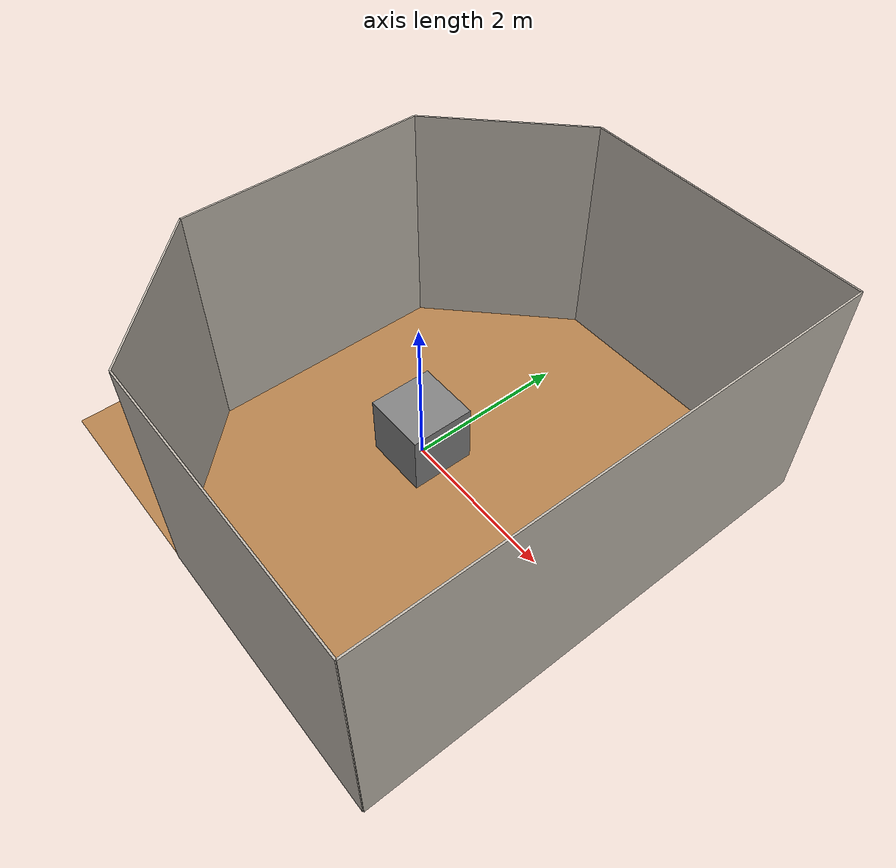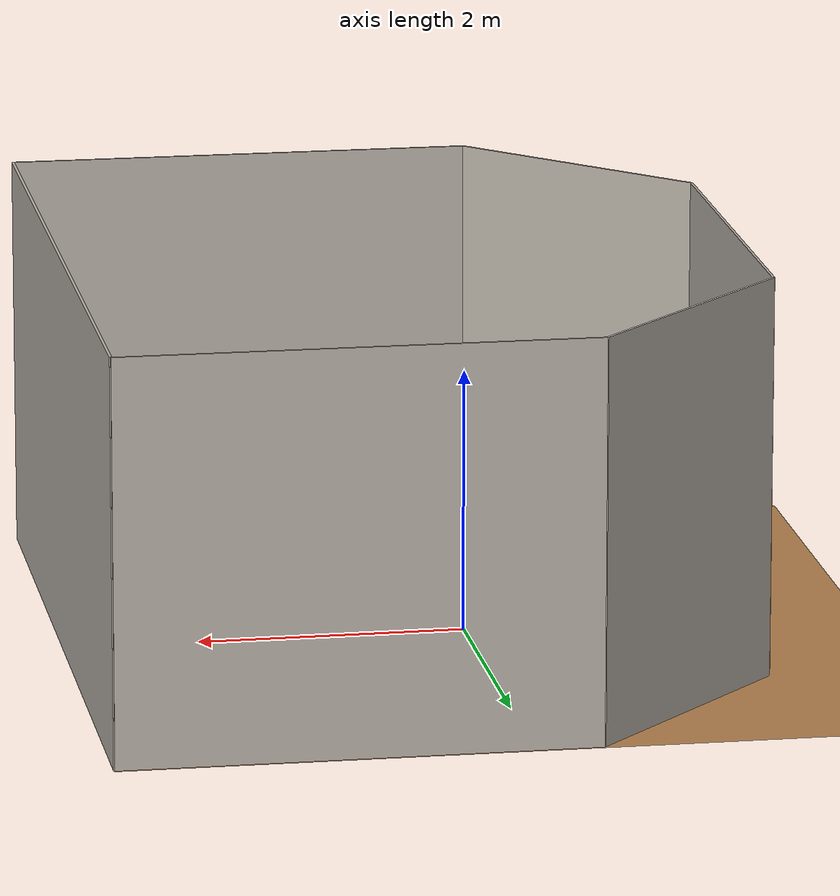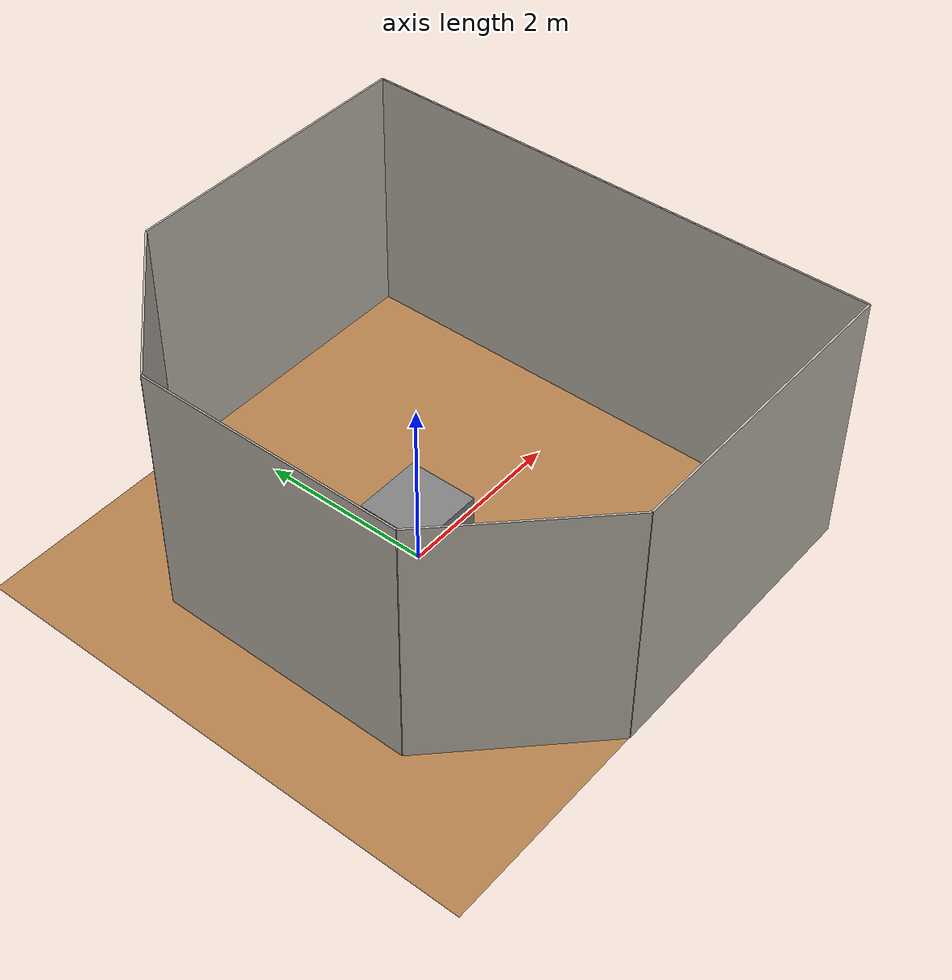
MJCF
<mujoco model="table_arena">
  <asset>
    <texture builtin="gradient" height="256" rgb1=".9 .9 1." rgb2=".2 .3 .4" type="skybox" width="256"/>
    <texture file="../textures/wood-tiles.png" type="2d" name="texplane"/>
    <material name="floorplane" reflectance="0.01" shininess="0.0" specular="0.0" texrepeat="2 2" texture="texplane" texuniform="true"/>
    <!-- ceramic table texture and material-->
    <texture file="../textures/ceramic.png" type="cube" name="tex-ceramic"/>
    <material name="table_ceramic" reflectance="0.0" shininess="0.0" specular="0.2" texrepeat="1 1" texture="tex-ceramic" />
    <!-- steel legs -->
    <texture file="../textures/steel-brushed.png" type="cube" name="tex-steel-brushed"/>
    <material name="table_legs_metal" reflectance="0.8" shininess="0.8" texrepeat="1 1" texture="tex-steel-brushed" />
    <!-- plaster walls -->
    <texture file="../textures/cream-plaster.png" type="2d" name="tex-cream-plaster"/>
    <material name="walls_mat" reflectance="0.0" shininess="0.1" specular="0.1" texrepeat="3 3" texture="tex-cream-plaster" texuniform="true" />
    <!-- added table texture and material for domain randomization -->
    <texture  name="textable" builtin="flat" height="512" width="512" rgb1="0.5 0.5 0.5" rgb2="0.5 0.5 0.5"/>
    <material name="table_mat" texture="textable" />
        <!-- storage area for table -->
      <texture file="../textures/green-mat.png" type="cube" name="tex-storage0"/>
      <material name="storage0" reflectance="0.8" shininess="0.8" texrepeat="1 1" texture="tex-storage0" />
      <texture file="../textures/brown-mat.png" type="cube" name="tex-storage1"/>
      <material name="storage1" reflectance="0.8" shininess="0.8" texrepeat="1 1" texture="tex-storage1" />

    <texture file="../textures/light-wood.png" type="2d" name="tex-light-wood"/>
    <texture file="../textures/dark-wood.png" type="2d" name="tex-dark-wood"/>
    <texture file="../textures/oak-wood.png" type="2d" name="tex-oak-wood"/>
    <material name="light-wood" reflectance="0" texrepeat="15 15" texture="tex-light-wood" texuniform="true"/>
    <material name="dark-wood" reflectance="0" texrepeat="5 5" texture="tex-dark-wood" texuniform="true"/>
    <material name="oak-wood" reflectance="0" texrepeat="5 5" texture="tex-oak-wood" texuniform="true"/>

  </asset>
  <worldbody>
    <!-- Floor -->
    <geom condim="3" material="floorplane" name="floor" pos="0 0 0" size="3 3 .125" type="plane"/>
    <!-- Walls (visual only) -->
    <geom pos="-1.25 2.25 1.5" quat="0.6532815 0.6532815 0.2705981 0.2705981" size="1.06 1.5 0.01" type="box" conaffinity="0" contype="0" group="1" name="wall_leftcorner_visual" material="walls_mat"/>
    <geom pos="-1.25 -2.25 1.5" quat="0.6532815 0.6532815 -0.2705981 -0.2705981" size="1.06 1.5 0.01" type="box" conaffinity="0" contype="0" group="1" name="wall_rightcorner_visual" material="walls_mat"/>
    <geom pos="1.25 3 1.5" quat="0.7071 0.7071 0 0" size="1.75 1.5 0.01" type="box" conaffinity="0" contype="0" group="1" name="wall_left_visual" material="walls_mat"/>
    <geom pos="1.25 -3 1.5" quat="0.7071 -0.7071 0 0" size="1.75 1.5 0.01" type="box" conaffinity="0" contype="0" group="1" name="wall_right_visual" material="walls_mat"/>
    <geom pos="-2 0 1.5" quat="0.5 0.5 0.5 0.5" size="1.5 1.5 0.01" type="box" conaffinity="0" contype="0" group="1" name="wall_rear_visual" material="walls_mat"/>
    <geom pos="3 0 1.5" quat="0.5 0.5 -0.5 -0.5" size="3 1.5 0.01" type="box" conaffinity="0" contype="0" group="1" name="wall_front_visual" material="walls_mat"/>
    <!-- Table body -->
    <body name="table" pos="0 0 0.4">
      <geom pos="0 0 0" size="0.4 0.4 0.4" type="box" group="0" name="table_collision" friction="1 0.005 0.0001"/>
      <geom pos="0 0 0" size="0.4 0.4 0.4" type="box" conaffinity="0" contype="0" group="1" name="table_visual" material="table_ceramic"/>
        <!-- Mat body -->
        <geom pos="-0.135 -0.29 0.0" size="0.105 0.08 0.026" type="box" conaffinity="0" contype="0" group="1" name="table_visual2" material="storage0" friction="0.6 0.005 0.0001"/>
        <geom pos="0.075 -0.29 0.0" size="0.105 0.08 0.026" type="box" conaffinity="0" contype="0" group="1" name="table_visual3" material="storage1" friction="0.6 0.005 0.0001"/>

      <site pos="0 0 0.4" name="table_top" size="0.001 0.001 0.001" rgba="0 0 0 0"/>

      <body name="bin0" pos="-0.05 0.29 0.0">
        <geom pos="0 0 0.02" size="0.12 0.07 0.02" type="box" group="0" friction="1 0.005 0.0001"/>
        <geom pos="0 0 0.02" material="oak-wood" size="0.12 0.07 0.02" type="box" conaffinity="0" contype="0" group="1"/>
        <geom pos="0 0.07 0.045" size="0.125 0.005 0.045" type="box" group="0" friction="1 0.005 0.0001" rgba="0 0 1 1"/>
        <geom pos="0 0.07 0.045" size="0.125 0.005 0.045" type="box" conaffinity="0" contype="0" group="1" material="oak-wood"/>
        <geom pos="0 -0.07 0.045" size="0.125 0.005 0.045" type="box" group="0" friction="1 0.005 0.0001" rgba="0 0 1 1"/>
        <geom pos="0 -0.07 0.045" size="0.125 0.005 0.045" type="box" conaffinity="0" contype="0" group="1" material="oak-wood"/>
        <geom pos="0.12 0 0.045" size="0.005 0.07 0.045" type="box" group="0" friction="1 0.005 0.0001" rgba="0 0 1 1"/>
        <geom pos="0.12 0 0.045" size="0.005 0.07 0.045" type="box" conaffinity="0" contype="0" group="1" material="oak-wood"/>
        <geom pos="-0.12 0 0.045" size="0.005 0.07 0.045" type="box" group="0" friction="1 0.005 0.0001" rgba="0 0 1 1"/>
        <geom pos="-0.12 0 0.045" size="0.005 0.07 0.045" type="box" conaffinity="0" contype="0" group="1" material="oak-wood"/>
      </body>

      <body name="bin1" pos="-0.25 0.08 0.0">
        <geom pos="0 0 0.02" size="0.06 0.12 0.02" type="box" group="0" friction="1 0.005 0.0001"/>
        <geom pos="0 0 0.02" material="oak-wood" size="0.06 0.12 0.02" type="box" conaffinity="0" contype="0" group="1"/>
        <geom pos="0 0.12 0.045" size="0.065 0.005 0.045" type="box" group="0" friction="1 0.005 0.0001" rgba="0 0 1 1"/>
        <geom pos="0 0.12 0.045" size="0.065 0.005 0.045" type="box" conaffinity="0" contype="0" group="1" material="oak-wood"/>
        <geom pos="0 -0.12 0.045" size="0.065 0.005 0.045" type="box" group="0" friction="1 0.005 0.0001" rgba="0 0 1 1"/>
        <geom pos="0 -0.12 0.045" size="0.065 0.005 0.045" type="box" conaffinity="0" contype="0" group="1" material="oak-wood"/>
        <geom pos="0.06 0 0.045" size="0.005 0.12 0.045" type="box" group="0" friction="1 0.005 0.0001" rgba="0 0 1 1"/>
        <geom pos="0.06 0 0.045" size="0.005 0.12 0.045" type="box" conaffinity="0" contype="0" group="1" material="oak-wood"/>
        <geom pos="-0.06 0 0.045" size="0.005 0.12 0.045" type="box" group="0" friction="1 0.005 0.0001" rgba="0 0 1 1"/>
        <geom pos="-0.06 0 0.045" size="0.005 0.12 0.045" type="box" conaffinity="0" contype="0" group="1" material="oak-wood"/>
      </body>

      <!-- Legs (visual only) -->
      <geom pos="0 0 0" size="0.05 0.1" type="cylinder" conaffinity="0" contype="0" group="1" name="table_leg1_visual" material="table_legs_metal"/>
      <geom pos="0 0 0" size="0.05 0.1" type="cylinder" conaffinity="0" contype="0" group="1" name="table_leg2_visual" material="table_legs_metal"/>
      <geom pos="0 0 0" size="0.05 0.1" type="cylinder" conaffinity="0" contype="0" group="1" name="table_leg3_visual" material="table_legs_metal"/>
      <geom pos="0 0 0" size="0.05 0.1" type="cylinder" conaffinity="0" contype="0" group="1" name="table_leg4_visual" material="table_legs_metal"/>
    </body>

    <light name="light1" diffuse=".8 .8 .8" dir="0 -.15 -1" directional="false" pos="1 1 4.0" specular="0.3 0.3 0.3" castshadow="false"/>
    <light name="light2" diffuse=".8 .8 .8" dir="0 -.15 -1" directional="false" pos="-3. -3. 4.0" specular="0.3 0.3 0.3" castshadow="false"/>
    <!-- front view -->
    <camera mode="fixed" name="frontview" pos="1.6 0 1.45" quat="0.56 0.43 0.43 0.56"/>
    <!-- bird view -->
    <camera mode="fixed" name="birdview" pos="-0.2 0 3.0" quat="0.7071 0 0 0.7071"/>
    <!-- agent view -->
    <camera mode="fixed" name="agentview" pos="0.571 0 1.421" quat="0.653 0.271 0.271 0.653"/>
    <!-- side view -->
    <camera mode="fixed" name="sideview" pos="-0.05651774593317116 1.2761224129427358 1.4879572214102434" quat="0.009905065491771751 0.006877963156909582 0.5912228352893879 0.806418094001364" />
  </worldbody>
</mujoco>
